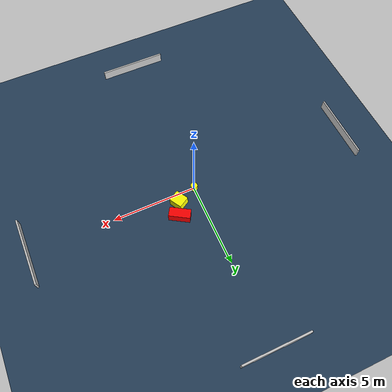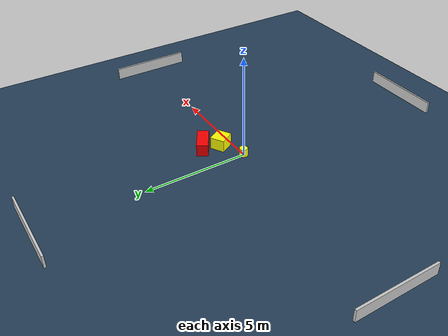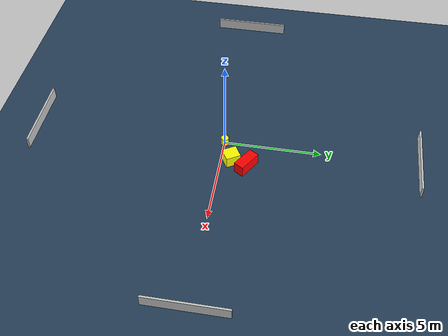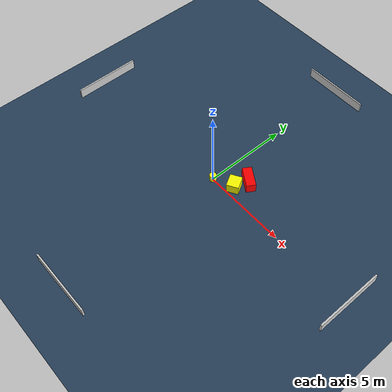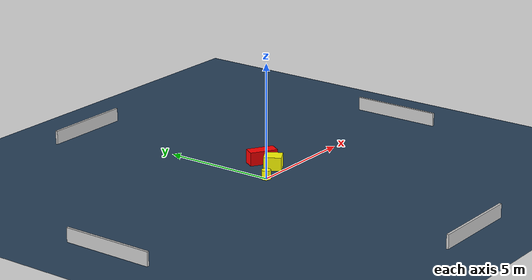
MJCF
<?xml version="1.0" ?>
<mujoco model="generated_environment">
  <option timestep="0.01" integrator="RK4" cone="elliptic"/>
  <default>
    <geom density="1"/>
  </default>
  <asset>
    <texture builtin="gradient" height="3072" name="skybox" rgb1="0.3 0.5 0.7" rgb2="0 0 0" type="skybox" width="512"/>
    <texture builtin="checker" height="300" name="groundplane" rgb1="0.2 0.3 0.4" rgb2="0.1 0.2 0.3" type="2d" width="300"/>
    <material name="groundplane" reflectance="0.2" texrepeat="5 5" texture="groundplane"/>
  </asset>
  <worldbody>
    <light dir="0 0 -1" directional="true" pos="0 0 1.5"/>
    <geom condim="3" friction="0.5 0.005 0.001" material="groundplane" name="floor" pos="0 0 0" size="0 0 0.05" type="plane"/>
    <body name="walls">
      <geom name="wall_1" condim="4" pos="-10.0 0.0 0.3" rgba="0.800000011920929 0.800000011920929 0.800000011920929 1.0" size="0.05 2.0 0.3" type="box"/>
      <geom name="wall_2" condim="4" pos="10.0 0.0 0.3" rgba="0.800000011920929 0.800000011920929 0.800000011920929 1.0" size="0.05 2.0 0.3" type="box"/>
      <geom name="wall_3" condim="4" pos="0.0 -10.0 0.3" rgba="0.800000011920929 0.800000011920929 0.800000011920929 1.0" size="2.0 0.05 0.3" type="box"/>
      <geom name="wall_4" condim="4" pos="0.0 10.0 0.3" rgba="0.800000011920929 0.800000011920929 0.800000011920929 1.0" size="2.0 0.05 0.3" type="box"/>
    </body>
    <body name="robot">
      <joint name="joint_x" type="slide" pos="0 0 0" axis="1 0 0"/>
      <joint name="joint_y" type="slide" pos="0 0 0" axis="0 1 0"/>
      <geom name="robot" type="cylinder" pos="0.0 0.0 0.2" size="0.2 0.2 0.0" mass="5.0" friction="1.0 0.005 0.0001" condim="4" rgba="1.0 1.0 0.0 1.0"/>
    </body>
    <body name="obstacle_1_movable">
      <geom name="obstacle_1_movable" condim="4" pos="1.19052631932496 0.5166676089774151 0.3" euler="0 0 30.217765836108367" friction="0.0 0.005 0.001" rgba="1.0 1.0 0.0 1.0" size="0.3500052793953623 0.3848775553972552 0.3" type="box" mass="0.1"/>
      <joint type="free"/>
    </body>
    <body name="obstacle_2_static">
      <geom name="obstacle_2_static" condim="4" pos="1.4823481361515123 1.333714489812842 0.3" euler="0 0 328.3681377260677" friction="0.0 0.005 0.001" rgba="1.0 0.0 0.0 1.0" size="0.6185187142445658 0.2743336162611548 0.3" type="box"/>
    </body>
  </worldbody>
  <actuator>
    <motor name="actuator_x" joint="joint_x" gear="1" ctrlrange="-1 1"/>
    <motor name="actuator_y" joint="joint_y" gear="1" ctrlrange="-1 1"/>
  </actuator>
</mujoco>
